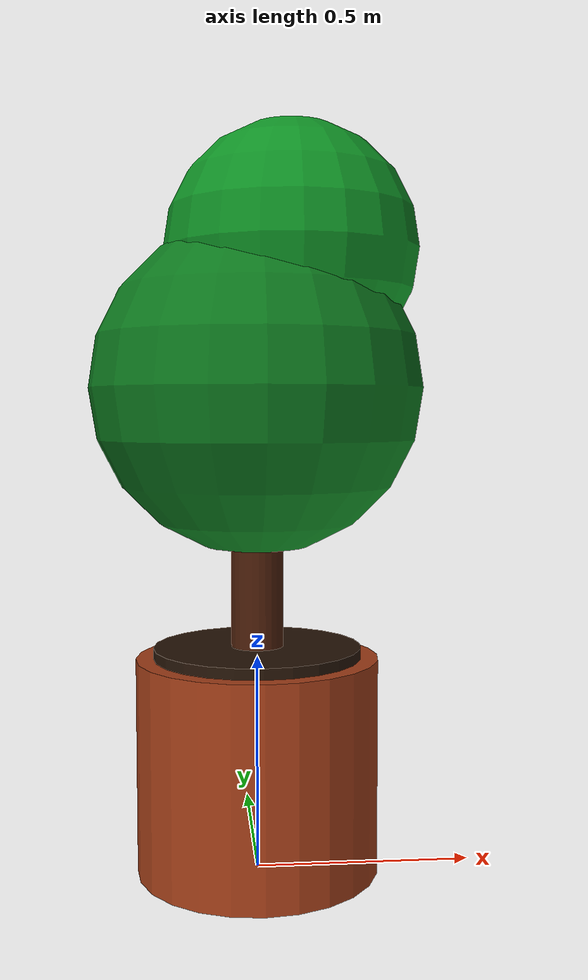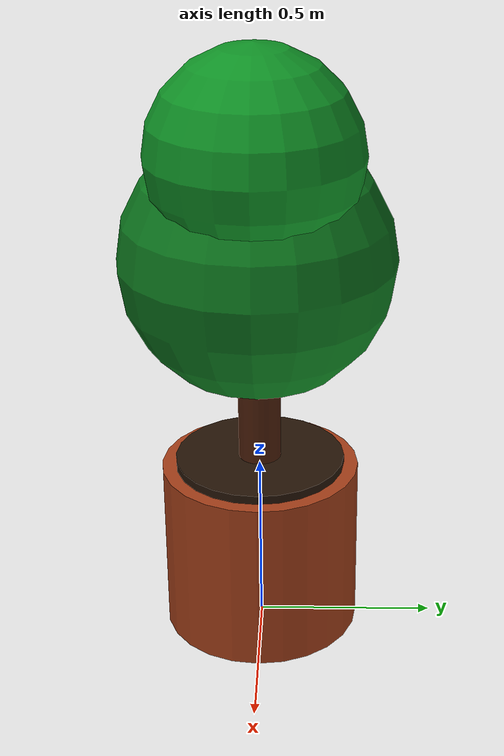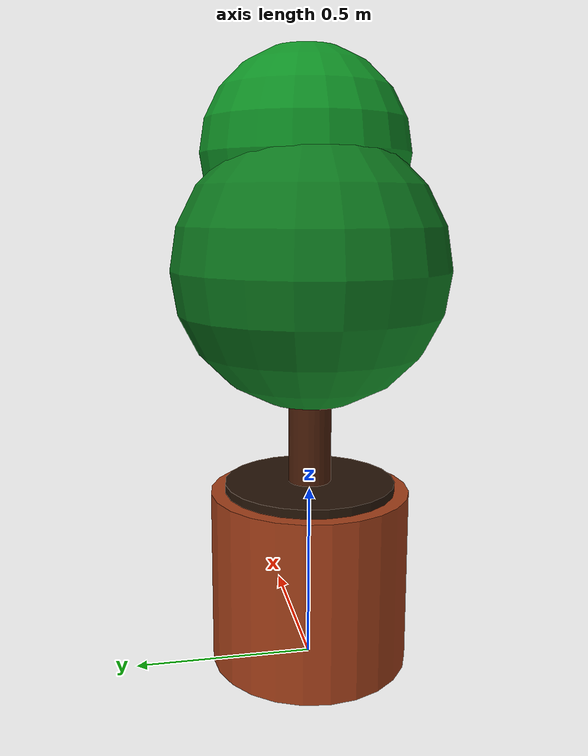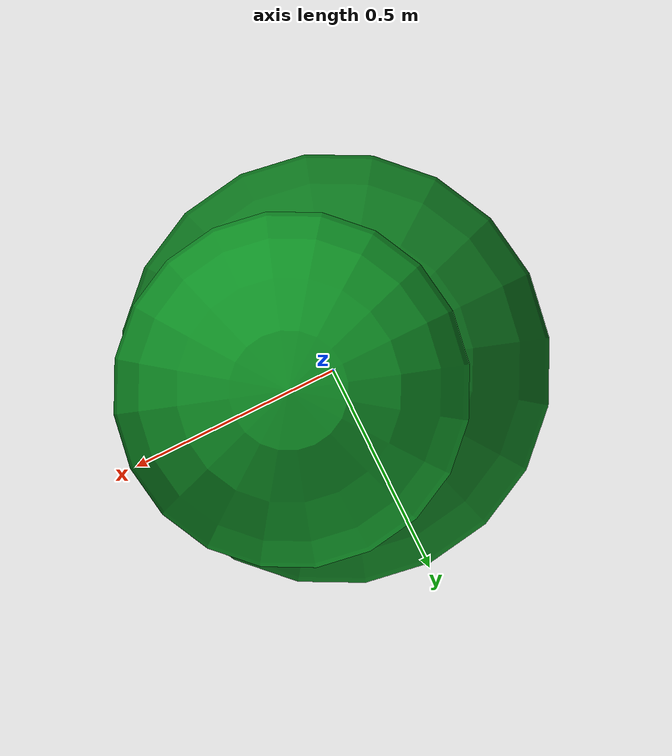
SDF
<?xml version="1.0"?>
<sdf version="1.10">
  <model name="restaurant_plant">
    <static>true</static>

    <link name="plant_link">
      <!-- Collision du pot détectable par le robot -->
      <collision name="pot_collision">
        <pose>0 0 0.25 0 0 0</pose>
        <geometry>
          <cylinder>
            <radius>0.28</radius>
            <length>0.5</length>
          </cylinder>
        </geometry>
      </collision>

      <visual name="pot_visual">
        <pose>0 0 0.25 0 0 0</pose>
        <geometry>
          <cylinder>
            <radius>0.28</radius>
            <length>0.5</length>
          </cylinder>
        </geometry>
        <material>
          <ambient>0.45 0.16 0.07 1</ambient>
          <diffuse>0.65 0.25 0.10 1</diffuse>
        </material>
      </visual>

      <visual name="soil_visual">
        <pose>0 0 0.51 0 0 0</pose>
        <geometry>
          <cylinder>
            <radius>0.24</radius>
            <length>0.03</length>
          </cylinder>
        </geometry>
        <material>
          <ambient>0.10 0.05 0.02 1</ambient>
          <diffuse>0.15 0.08 0.03 1</diffuse>
        </material>
      </visual>

      <visual name="trunk_visual">
        <pose>0 0 0.83 0 0 0</pose>
        <geometry>
          <cylinder>
            <radius>0.06</radius>
            <length>0.65</length>
          </cylinder>
        </geometry>
        <material>
          <ambient>0.20 0.08 0.03 1</ambient>
          <diffuse>0.30 0.12 0.04 1</diffuse>
        </material>
      </visual>

      <visual name="lower_foliage">
        <pose>0 0 1.12 0 0 0</pose>
        <geometry>
          <sphere><radius>0.38</radius></sphere>
        </geometry>
        <material>
          <ambient>0.03 0.30 0.08 1</ambient>
          <diffuse>0.05 0.48 0.12 1</diffuse>
        </material>
      </visual>

      <visual name="upper_foliage">
        <pose>0.08 0 1.43 0 0 0</pose>
        <geometry>
          <sphere><radius>0.29</radius></sphere>
        </geometry>
        <material>
          <ambient>0.04 0.38 0.10 1</ambient>
          <diffuse>0.06 0.58 0.15 1</diffuse>
        </material>
      </visual>
    </link>
  </model>
</sdf>
